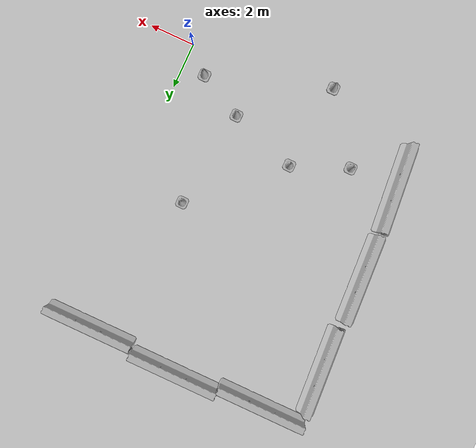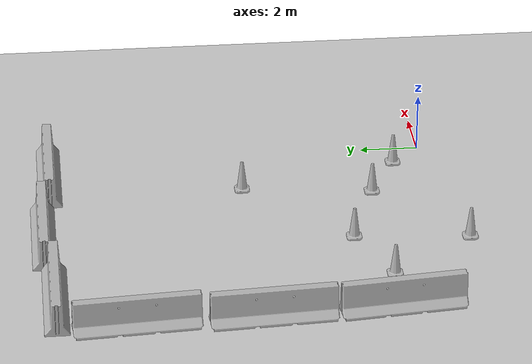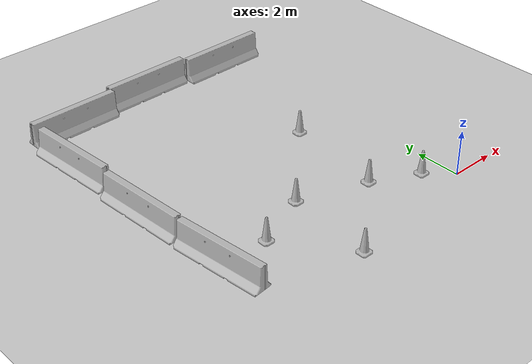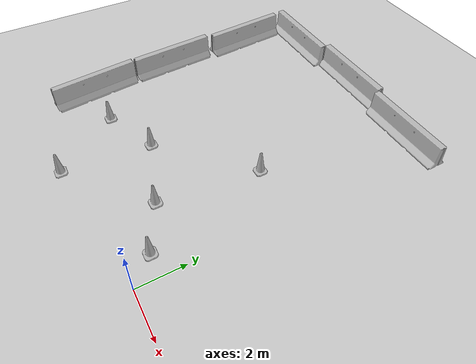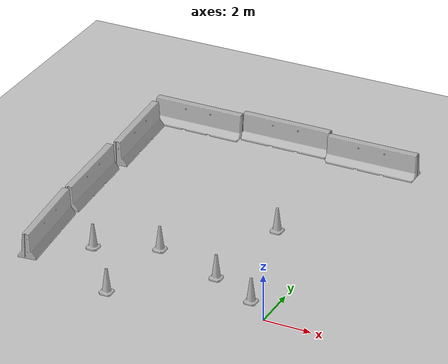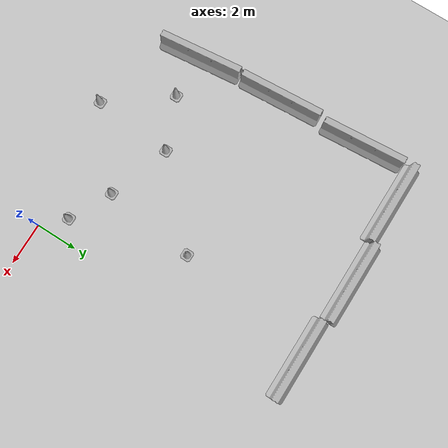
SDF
<sdf version="1.4">
 <world name="default">
  <model name="ground_plane">
   <static>1</static>
   <link name="link">
    <collision name="collision">
     <geometry><plane><normal>0 0 1</normal><size>100 100</size></plane></geometry>
     <surface><friction><ode><mu>100</mu><mu2>50</mu2></ode></friction></surface>
    </collision>
    <visual name="visual">
     <cast_shadows>0</cast_shadows>
     <geometry><plane><normal>0 0 1</normal><size>100 100</size></plane></geometry>
     <material>
      <script><uri>file://media/materials/scripts/gazebo.material</uri><name>Gazebo/Grey</name></script>
     </material>
    </visual>
    <velocity_decay><linear>0</linear><angular>0</angular></velocity_decay>
   </link>
  </model>
  <model name="jersey_barrier_5">
   <static>1</static>
   <link name="link">
    <visual name="visual">
     <geometry><mesh><uri>model://jersey_barrier/meshes/jersey_barrier.dae</uri></mesh></geometry>
    </visual>
    <collision name="upright">
     <pose>0 0 0.5715 0 -0 0</pose>
     <geometry><box><size>4.06542 0.3063 1.143</size></box></geometry>
    </collision>
    <collision name="base">
     <pose>0 0 0.032258 0 -0 0</pose>
     <geometry><box><size>4.06542 0.8107 0.064516</size></box></geometry>
    </collision>
    <collision name="base2">
     <pose>0 0 0.1 0 -0 0</pose>
     <geometry><box><size>4.06542 0.65 0.1</size></box></geometry>
    </collision>
    <collision name="base3">
     <pose>0 0 0.2 0 -0 0</pose>
     <geometry><box><size>4.06542 0.5 0.1</size></box></geometry>
    </collision>
    <collision name="left-angle">
     <pose>0 -0.224 0.2401 0.9 -0 0</pose>
     <geometry><box><size>4.06542 0.5 0.064516</size></box></geometry>
    </collision>
    <collision name="right-angle">
     <pose>0 0.224 0.2401 -0.9 0 0</pose>
     <geometry><box><size>4.06542 0.5 0.064516</size></box></geometry>
    </collision>
    <velocity_decay><linear>0</linear><angular>0</angular></velocity_decay>
   </link>
   <pose>-9.25889 13.0001 0 0 -0 0</pose>
  </model>
  <model name="jersey_barrier_6">
   <static>1</static>
   <link name="link">
    <visual name="visual">
     <geometry><mesh><uri>model://jersey_barrier/meshes/jersey_barrier.dae</uri></mesh></geometry>
    </visual>
    <collision name="upright">
     <pose>0 0 0.5715 0 -0 0</pose>
     <geometry><box><size>4.06542 0.3063 1.143</size></box></geometry>
    </collision>
    <collision name="base">
     <pose>0 0 0.032258 0 -0 0</pose>
     <geometry><box><size>4.06542 0.8107 0.064516</size></box></geometry>
    </collision>
    <collision name="base2">
     <pose>0 0 0.1 0 -0 0</pose>
     <geometry><box><size>4.06542 0.65 0.1</size></box></geometry>
    </collision>
    <collision name="base3">
     <pose>0 0 0.2 0 -0 0</pose>
     <geometry><box><size>4.06542 0.5 0.1</size></box></geometry>
    </collision>
    <collision name="left-angle">
     <pose>0 -0.224 0.2401 0.9 -0 0</pose>
     <geometry><box><size>4.06542 0.5 0.064516</size></box></geometry>
    </collision>
    <collision name="right-angle">
     <pose>0 0.224 0.2401 -0.9 0 0</pose>
     <geometry><box><size>4.06542 0.5 0.064516</size></box></geometry>
    </collision>
    <velocity_decay><linear>0</linear><angular>0</angular></velocity_decay>
   </link>
   <pose>-5.24766 13.2823 0 0 -0 0</pose>
  </model>
  <model name="jersey_barrier_7">
   <static>1</static>
   <link name="link">
    <visual name="visual">
     <geometry><mesh><uri>model://jersey_barrier/meshes/jersey_barrier.dae</uri></mesh></geometry>
    </visual>
    <collision name="upright">
     <pose>0 0 0.5715 0 -0 0</pose>
     <geometry><box><size>4.06542 0.3063 1.143</size></box></geometry>
    </collision>
    <collision name="base">
     <pose>0 0 0.032258 0 -0 0</pose>
     <geometry><box><size>4.06542 0.8107 0.064516</size></box></geometry>
    </collision>
    <collision name="base2">
     <pose>0 0 0.1 0 -0 0</pose>
     <geometry><box><size>4.06542 0.65 0.1</size></box></geometry>
    </collision>
    <collision name="base3">
     <pose>0 0 0.2 0 -0 0</pose>
     <geometry><box><size>4.06542 0.5 0.1</size></box></geometry>
    </collision>
    <collision name="left-angle">
     <pose>0 -0.224 0.2401 0.9 -0 0</pose>
     <geometry><box><size>4.06542 0.5 0.064516</size></box></geometry>
    </collision>
    <collision name="right-angle">
     <pose>0 0.224 0.2401 -0.9 0 0</pose>
     <geometry><box><size>4.06542 0.5 0.064516</size></box></geometry>
    </collision>
    <velocity_decay><linear>0</linear><angular>0</angular></velocity_decay>
   </link>
   <pose>-1.1439 12.9956 0 0 -0 0</pose>
  </model>
  <model name="jersey_barrier_15">
   <static>1</static>
   <link name="link">
    <visual name="visual">
     <geometry><mesh><uri>model://jersey_barrier/meshes/jersey_barrier.dae</uri></mesh></geometry>
    </visual>
    <collision name="upright">
     <pose>0 0 0.5715 0 -0 0</pose>
     <geometry><box><size>4.06542 0.3063 1.143</size></box></geometry>
    </collision>
    <collision name="base">
     <pose>0 0 0.032258 0 -0 0</pose>
     <geometry><box><size>4.06542 0.8107 0.064516</size></box></geometry>
    </collision>
    <collision name="base2">
     <pose>0 0 0.1 0 -0 0</pose>
     <geometry><box><size>4.06542 0.65 0.1</size></box></geometry>
    </collision>
    <collision name="base3">
     <pose>0 0 0.2 0 -0 0</pose>
     <geometry><box><size>4.06542 0.5 0.1</size></box></geometry>
    </collision>
    <collision name="left-angle">
     <pose>0 -0.224 0.2401 0.9 -0 0</pose>
     <geometry><box><size>4.06542 0.5 0.064516</size></box></geometry>
    </collision>
    <collision name="right-angle">
     <pose>0 0.224 0.2401 -0.9 0 0</pose>
     <geometry><box><size>4.06542 0.5 0.064516</size></box></geometry>
    </collision>
    <velocity_decay><linear>0</linear><angular>0</angular></velocity_decay>
   </link>
   <pose>-10.907 6.17584 0 0 -0 1.63254</pose>
  </model>
  <model name="jersey_barrier_16">
   <static>1</static>
   <link name="link">
    <visual name="visual">
     <geometry><mesh><uri>model://jersey_barrier/meshes/jersey_barrier.dae</uri></mesh></geometry>
    </visual>
    <collision name="upright">
     <pose>0 0 0.5715 0 -0 0</pose>
     <geometry><box><size>4.06542 0.3063 1.143</size></box></geometry>
    </collision>
    <collision name="base">
     <pose>0 0 0.032258 0 -0 0</pose>
     <geometry><box><size>4.06542 0.8107 0.064516</size></box></geometry>
    </collision>
    <collision name="base2">
     <pose>0 0 0.1 0 -0 0</pose>
     <geometry><box><size>4.06542 0.65 0.1</size></box></geometry>
    </collision>
    <collision name="base3">
     <pose>0 0 0.2 0 -0 0</pose>
     <geometry><box><size>4.06542 0.5 0.1</size></box></geometry>
    </collision>
    <collision name="left-angle">
     <pose>0 -0.224 0.2401 0.9 -0 0</pose>
     <geometry><box><size>4.06542 0.5 0.064516</size></box></geometry>
    </collision>
    <collision name="right-angle">
     <pose>0 0.224 0.2401 -0.9 0 0</pose>
     <geometry><box><size>4.06542 0.5 0.064516</size></box></geometry>
    </collision>
    <velocity_decay><linear>0</linear><angular>0</angular></velocity_decay>
   </link>
   <pose>-10.6126 2.01572 0 0 -0 1.67324</pose>
  </model>
  <model name="jersey_barrier_21">
   <static>1</static>
   <link name="link">
    <visual name="visual">
     <geometry><mesh><uri>model://jersey_barrier/meshes/jersey_barrier.dae</uri></mesh></geometry>
    </visual>
    <collision name="upright">
     <pose>0 0 0.5715 0 -0 0</pose>
     <geometry><box><size>4.06542 0.3063 1.143</size></box></geometry>
    </collision>
    <collision name="base">
     <pose>0 0 0.032258 0 -0 0</pose>
     <geometry><box><size>4.06542 0.8107 0.064516</size></box></geometry>
    </collision>
    <collision name="base2">
     <pose>0 0 0.1 0 -0 0</pose>
     <geometry><box><size>4.06542 0.65 0.1</size></box></geometry>
    </collision>
    <collision name="base3">
     <pose>0 0 0.2 0 -0 0</pose>
     <geometry><box><size>4.06542 0.5 0.1</size></box></geometry>
    </collision>
    <collision name="left-angle">
     <pose>0 -0.224 0.2401 0.9 -0 0</pose>
     <geometry><box><size>4.06542 0.5 0.064516</size></box></geometry>
    </collision>
    <collision name="right-angle">
     <pose>0 0.224 0.2401 -0.9 0 0</pose>
     <geometry><box><size>4.06542 0.5 0.064516</size></box></geometry>
    </collision>
    <velocity_decay><linear>0</linear><angular>0</angular></velocity_decay>
   </link>
   <pose>-10.9991 10.488 0 0 -0 1.64124</pose>
  </model>
  <model name="Construction Cone_8">
   <link name="link">
    <collision name="collision">
     <geometry>
      <mesh><scale>10 10 10</scale><uri>model://construction_cone/meshes/construction_cone.dae</uri></mesh>
     </geometry>
    </collision>
    <visual name="visual">
     <geometry>
      <mesh><scale>10 10 10</scale><uri>model://construction_cone/meshes/construction_cone.dae</uri></mesh>
     </geometry>
    </visual>
    <velocity_decay><linear>0</linear><angular>0</angular></velocity_decay>
    <inertial>
     <inertia><ixx>1</ixx><ixy>0</ixy><ixz>0</ixz><iyy>1</iyy><iyz>0</iyz><izz>1</izz></inertia>
     <mass>1</mass>
    </inertial>
   </link>
   <pose>-8.47318 1.98252 -0 0 -0 0</pose>
   <static>0</static>
  </model>
  <model name="Construction Cone_9">
   <link name="link">
    <collision name="collision">
     <geometry>
      <mesh><scale>10 10 10</scale><uri>model://construction_cone/meshes/construction_cone.dae</uri></mesh>
     </geometry>
    </collision>
    <visual name="visual">
     <geometry>
      <mesh><scale>10 10 10</scale><uri>model://construction_cone/meshes/construction_cone.dae</uri></mesh>
     </geometry>
    </visual>
    <velocity_decay><linear>0</linear><angular>0</angular></velocity_decay>
    <inertial>
     <inertia><ixx>1</ixx><ixy>0</ixy><ixz>0</ixz><iyy>1</iyy><iyz>0</iyz><izz>1</izz></inertia>
     <mass>1</mass>
    </inertial>
   </link>
   <pose>-6.32793 -0.848913 -0 -2e-06 -0 -0</pose>
   <static>0</static>
  </model>
  <model name="Construction Cone_10">
   <link name="link">
    <collision name="collision">
     <geometry>
      <mesh><scale>10 10 10</scale><uri>model://construction_cone/meshes/construction_cone.dae</uri></mesh>
     </geometry>
    </collision>
    <visual name="visual">
     <geometry>
      <mesh><scale>10 10 10</scale><uri>model://construction_cone/meshes/construction_cone.dae</uri></mesh>
     </geometry>
    </visual>
    <velocity_decay><linear>0</linear><angular>0</angular></velocity_decay>
    <inertial>
     <inertia><ixx>1</ixx><ixy>0</ixy><ixz>0</ixz><iyy>1</iyy><iyz>0</iyz><izz>1</izz></inertia>
     <mass>1</mass>
    </inertial>
   </link>
   <pose>-2.45691 6.42269 -1e-05 0 1e-06 0</pose>
   <static>0</static>
  </model>
  <model name="Construction Cone_11">
   <link name="link">
    <collision name="collision">
     <geometry>
      <mesh><scale>10 10 10</scale><uri>model://construction_cone/meshes/construction_cone.dae</uri></mesh>
     </geometry>
    </collision>
    <visual name="visual">
     <geometry>
      <mesh><scale>10 10 10</scale><uri>model://construction_cone/meshes/construction_cone.dae</uri></mesh>
     </geometry>
    </visual>
    <velocity_decay><linear>0</linear><angular>0</angular></velocity_decay>
    <inertial>
     <inertia><ixx>1</ixx><ixy>0</ixy><ixz>0</ixz><iyy>1</iyy><iyz>0</iyz><izz>1</izz></inertia>
     <mass>1</mass>
    </inertial>
   </link>
   <pose>-1 1 -9e-06 2e-06 1e-06 8.07794e-28</pose>
   <static>0</static>
  </model>
  <model name="Construction Cone_13">
   <link name="link">
    <collision name="collision">
     <geometry>
      <mesh><scale>10 10 10</scale><uri>model://construction_cone/meshes/construction_cone.dae</uri></mesh>
     </geometry>
    </collision>
    <visual name="visual">
     <geometry>
      <mesh><scale>10 10 10</scale><uri>model://construction_cone/meshes/construction_cone.dae</uri></mesh>
     </geometry>
    </visual>
    <velocity_decay><linear>0</linear><angular>0</angular></velocity_decay>
    <inertial>
     <inertia><ixx>1</ixx><ixy>0</ixy><ixz>0</ixz><iyy>1</iyy><iyz>0</iyz><izz>1</izz></inertia>
     <mass>1</mass>
    </inertial>
   </link>
   <pose>-6 3 -1e-06 -2e-06 -0 -0</pose>
   <static>0</static>
  </model>
  <model name="Construction Cone_16">
   <link name="link">
    <collision name="collision">
     <geometry>
      <mesh><scale>10 10 10</scale><uri>model://construction_cone/meshes/construction_cone.dae</uri></mesh>
     </geometry>
    </collision>
    <visual name="visual">
     <geometry>
      <mesh><scale>10 10 10</scale><uri>model://construction_cone/meshes/construction_cone.dae</uri></mesh>
     </geometry>
    </visual>
    <velocity_decay><linear>0</linear><angular>0</angular></velocity_decay>
    <inertial>
     <inertia><ixx>1</ixx><ixy>0</ixy><ixz>0</ixz><iyy>1</iyy><iyz>0</iyz><izz>1</izz></inertia>
     <mass>1</mass>
    </inertial>
   </link>
   <pose>-3 2 0 -3e-06 2e-06 0</pose>
   <static>0</static>
  </model>
 </world>
</sdf>
